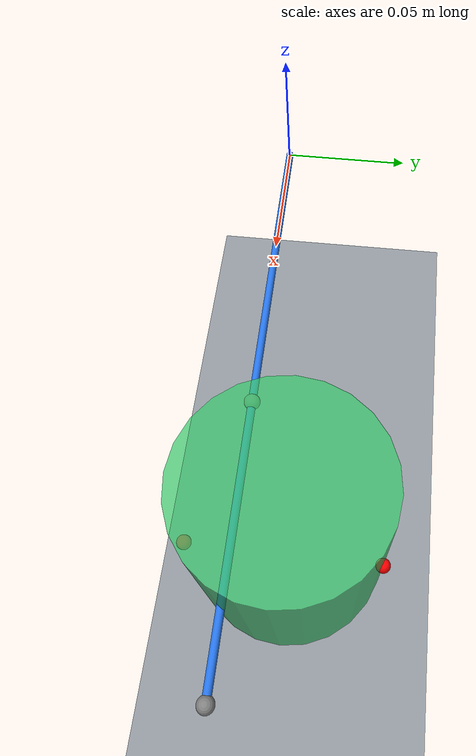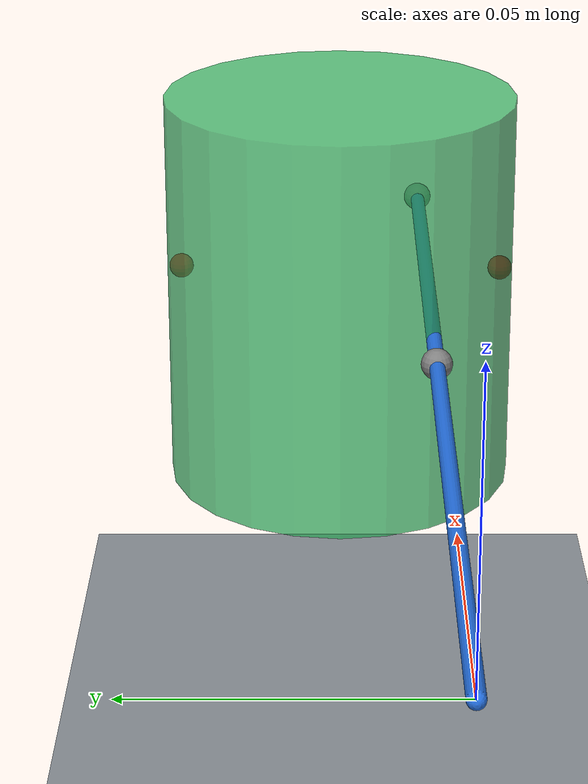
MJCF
<mujoco model="planar_2R_grasp">
      <compiler angle="radian"/>
      <option gravity="0 0 -9.81"/>
      <visual><global offwidth="1000" offheight="750"/></visual>
      <default><geom density="1000" friction="0.6 0.005 0.0001"/><joint damping="1"/></default>
      <asset>
        <texture name="checker" type="2d" builtin="checker" rgb1="0.85 0.85 0.85" rgb2="0.25 0.3 0.35" width="512" height="512"/>
        <material name="floor_mat" texture="checker" texrepeat="12 12" texuniform="true"/>
      </asset>
      <worldbody>
        <light pos="0 -0.4 1" dir="0 0 -1"/>
        <geom name="floor" type="plane" pos="0 0 -0.1" size="1 1 0.01" material="floor_mat"/>

        <body name="finger0_proximal">
          <inertial pos="0.06 0 0" mass="0.02" diaginertia="1e-8 2.3999999999999997e-05 2.3999999999999997e-05"/>
          <joint name="q00" type="hinge" axis="0 0 1" limited="true" range="-3.141593 3.141593"/>
          <geom name="link00" type="capsule" fromto="0 0 0 0.12 0 0" size="1e-05" rgba="0 0 0 0"/>
          <geom name="visual_link00" type="capsule" fromto="0 0 0 0.12 0 0" size="0.0015" rgba="0.15 0.45 0.9 1" contype="0" conaffinity="0"/>
          <site name="A" pos="0.12 0 0" size="0.003"/>
          <body name="finger0_distal" pos="0.12 0 0">
            <inertial pos="0.05 0 0" mass="0.02" diaginertia="1e-8 1.6666666666666667e-05 1.6666666666666667e-05"/>
            <joint name="q01" type="hinge" axis="0 0 1" limited="true" range="-3.141593 3.141593"/>
            <geom name="link01" type="capsule" fromto="0 0 0 0.1 0 0" size="1e-05" rgba="0 0 0 0"/>
            <geom name="visual_link01" type="capsule" fromto="0 0 0 0.1 0 0" size="0.0015" rgba="0.15 0.45 0.9 1" contype="0" conaffinity="0"/>
            <site name="B" pos="0.1 0 0" size="0.003"/>
          </body>
        </body>
        <body name="finger1_proximal">
          <inertial pos="0.06 0 0" mass="0.02" diaginertia="1e-8 2.3999999999999997e-05 2.3999999999999997e-05"/>
          <joint name="q10" type="hinge" axis="0 0 1" limited="true" range="-3.141593 3.141593"/>
          <geom name="link10" type="capsule" fromto="0 0 0 0.12 0 0" size="1e-05" rgba="0 0 0 0"/>
          <geom name="visual_link10" type="capsule" fromto="0 0 0 0.12 0 0" size="0.0015" rgba="0.95 0.5 0.12 1" contype="0" conaffinity="0"/>
          <site name="C" pos="0.12 0 0" size="0.003"/>
          <body name="finger1_distal" pos="0.12 0 0">
            <inertial pos="0.05 0 0" mass="0.02" diaginertia="1e-8 1.6666666666666667e-05 1.6666666666666667e-05"/>
            <joint name="q11" type="hinge" axis="0 0 1" limited="true" range="-3.141593 3.141593"/>
            <geom name="link11" type="capsule" fromto="0 0 0 0.1 0 0" size="1e-05" rgba="0 0 0 0"/>
            <geom name="visual_link11" type="capsule" fromto="0 0 0 0.1 0 0" size="0.0015" rgba="0.95 0.5 0.12 1" contype="0" conaffinity="0"/>
            <site name="D" pos="0.1 0 0" size="0.003"/>
          </body>
        </body>
        <body name="object" mocap="true" pos="0.16205429709675045 0.01792555534531247 0">
          <geom name="cylinder" type="cylinder" size="0.03499 0.04" rgba="0 0 0 0"/>
          <geom name="visual_cylinder" type="cylinder" size="0.035 0.04" rgba="0.2 0.75 0.4 0.75" contype="0" conaffinity="0"/>
        </body>
        <body name="marker1" mocap="true" pos="0.17380301603035256 0.050894747076673116 0"><site name="P1" size="0.0025" rgba="1 0 0 1"/></body><body name="marker2" mocap="true" pos="0.1726567657505415 -0.015429918844771809 0"><site name="P2" size="0.0025" rgba="1 0 0 1"/></body>
      </worldbody>
      <contact><exclude body1="finger0_proximal" body2="finger1_proximal"/></contact>
      <actuator>
        <motor name="motor00" joint="q00" gear="1" ctrllimited="true" ctrlrange="-1 1"/>
        <motor name="motor01" joint="q01" gear="1" ctrllimited="true" ctrlrange="-1 1"/>
        <motor name="motor10" joint="q10" gear="1" ctrllimited="true" ctrlrange="-1 1"/>
        <motor name="motor11" joint="q11" gear="1" ctrllimited="true" ctrlrange="-1 1"/>
      </actuator>
      <keyframe><key name="grasp" qpos="0.7456655579667274 -1.0879901231433786 -0.28468697900420104 0.5924501585193472"/></keyframe>
    </mujoco>
